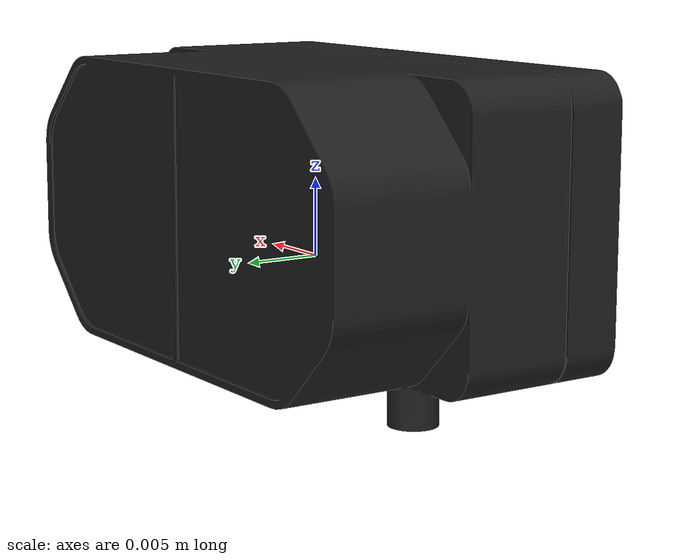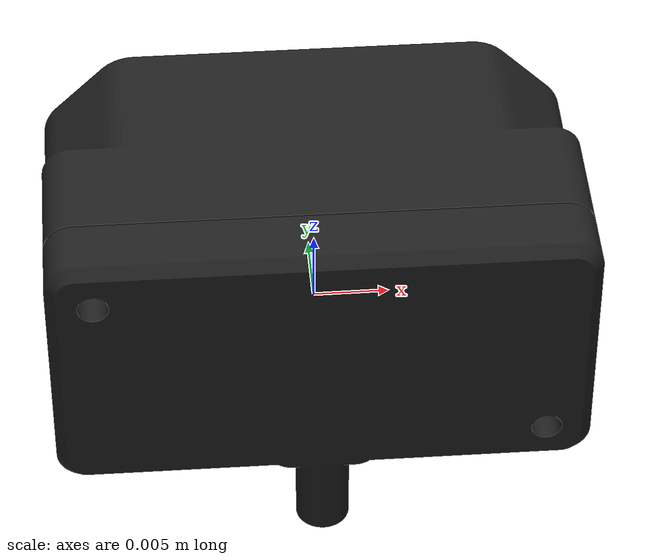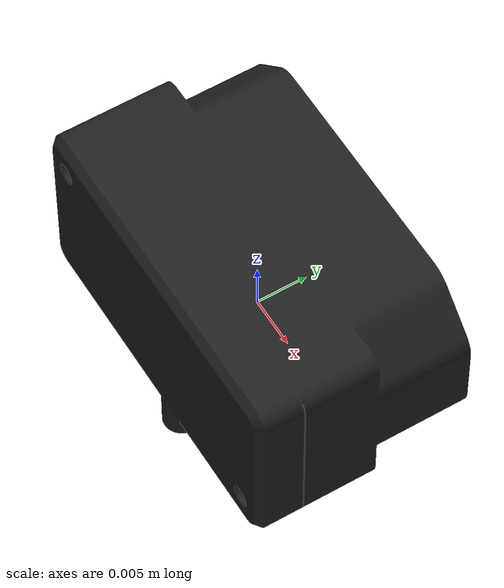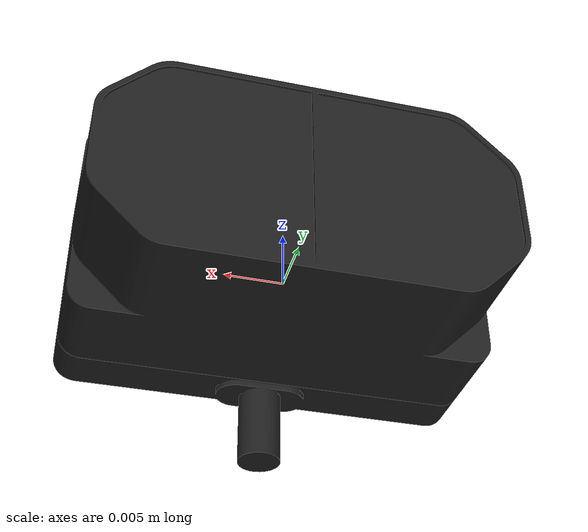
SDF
<?xml version="1.0" ?>
<sdf version="1.5">
  <model name="tfmini_lidar">
    <link name="link">
      <pose>0 0 0 0 0 0</pose>

      <inertial>
        <pose>0 0 0 0 0 0</pose>
        <mass>0.005</mass>
        <inertia>
          <ixx>1.0e-7</ixx>
          <ixy>0</ixy>
          <ixz>0</ixz>
          <iyy>1.0e-7</iyy>
          <iyz>0</iyz>
          <izz>1.0e-7</izz>
        </inertia>
      </inertial>

      <visual name="visual">
        <pose>0.0175 -0.0105 -0.0125 0 -1.5707963 0</pose>
        <geometry>
          <mesh>
            <uri>model://tfmini_lidar/meshes/tfmini.stl</uri>
            <!-- The CAD file is authored in millimetres (measured bounding box 25 x 21 x 35 raw
                 units). Without this scale it would spawn as a 25-metre block. -->
            <scale>0.001 0.001 0.001</scale>
          </mesh>
        </geometry>
        <material>
          <script>
            <name>Gazebo/Black</name>
            <uri>file://media/materials/scripts/gazebo.material</uri>
          </script>
        </material>
      </visual>

      <collision name="collision">
        <geometry>
          <box>
            <size>0.035 0.021 0.025</size>
          </box>
        </geometry>
      </collision>

      <sensor name="tfmini_lidar" type="ray">
        <pose>0 0 0 0 0.033896 1.575399</pose>
        <always_on>1</always_on>
        <update_rate>20</update_rate>
        <visualize>false</visualize>
        <ray>
          <scan>
            <horizontal>
              <samples>1</samples>
              <resolution>1</resolution>
              <min_angle>-0</min_angle>
              <max_angle>0</max_angle>
            </horizontal>
          </scan>
          <range>
            <min>0.06</min> <!-- do not change: use min_distance (below) for realistic behavior -->
            <max>35</max>   <!-- do not change: use max_distance (below) for realistic behavior -->
            <resolution>0.01</resolution>
          </range>
          <noise>
            <type>gaussian</type>
            <mean>0.0</mean>
            <stddev>0.01</stddev>
          </noise>
        </ray>

        <plugin name="LaserPlugin" filename="libgazebo_lidar_plugin.so">
          <robotNamespace></robotNamespace>
          <min_distance>0.1</min_distance>
          <max_distance>12.0</max_distance>
        </plugin>

        <plugin name="tfmini_ros_range" filename="libgazebo_ros_range.so">
          <robotNamespace></robotNamespace>
          <topicName>/tfmini/range</topicName>
          <frameName>tfmini_link</frameName>
          <fov>0.05</fov>
          <radiation>infrared</radiation>
          <minRange>0.1</minRange>
          <maxRange>12.0</maxRange>
          <gaussianNoise>0.01</gaussianNoise>
          <updateRate>20</updateRate>
        </plugin>
      </sensor>
    </link>
  </model>
</sdf>
